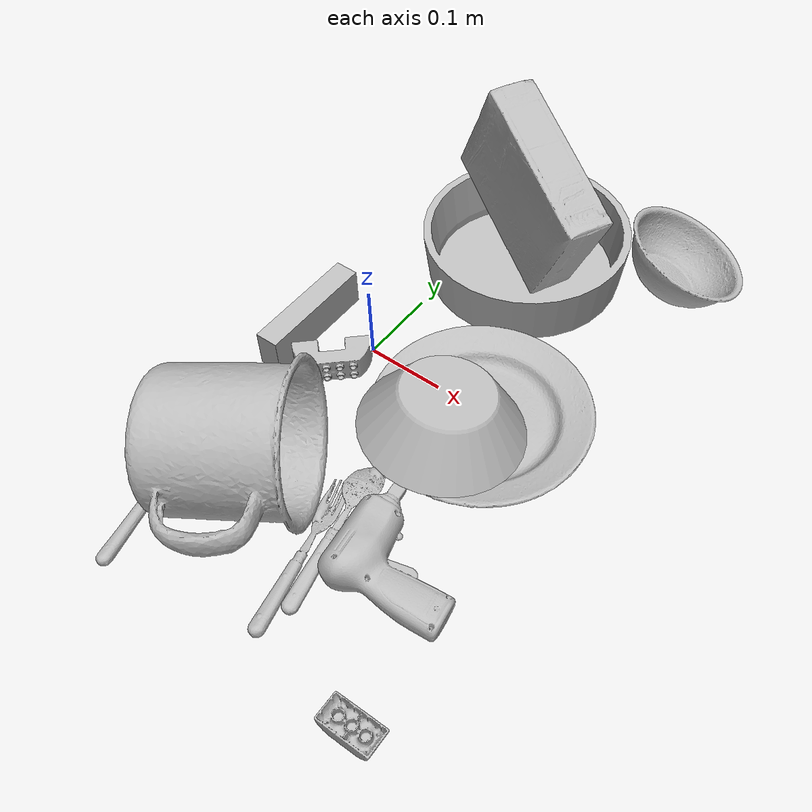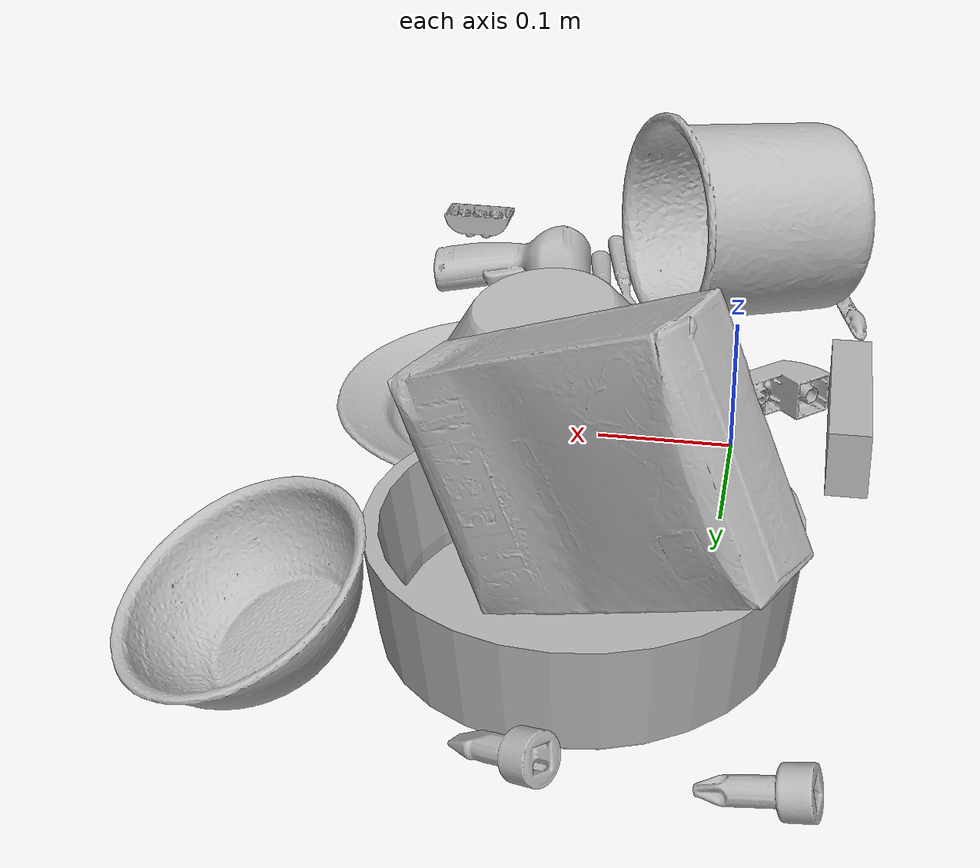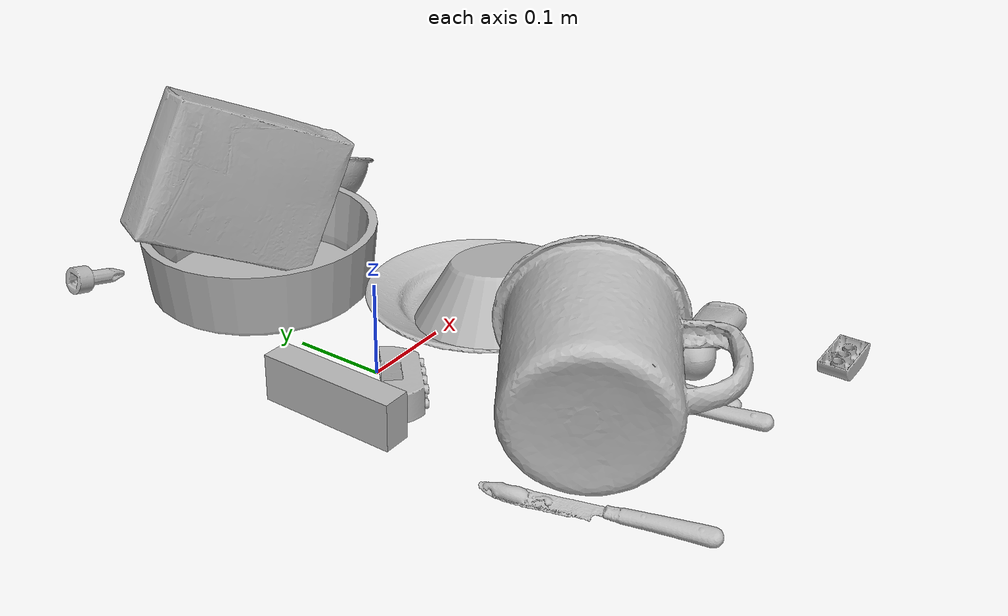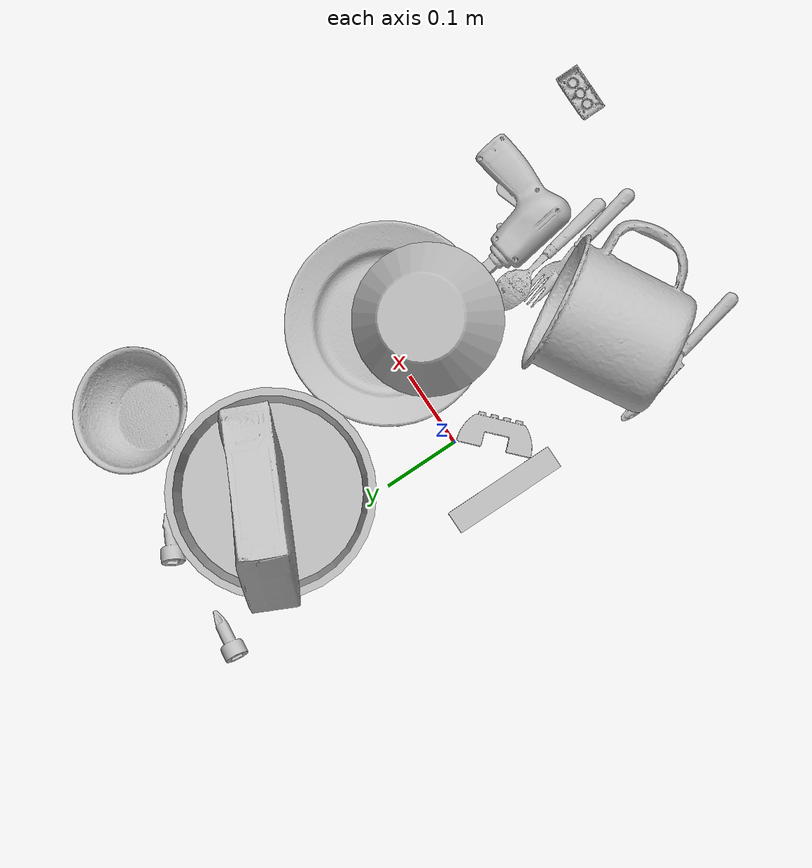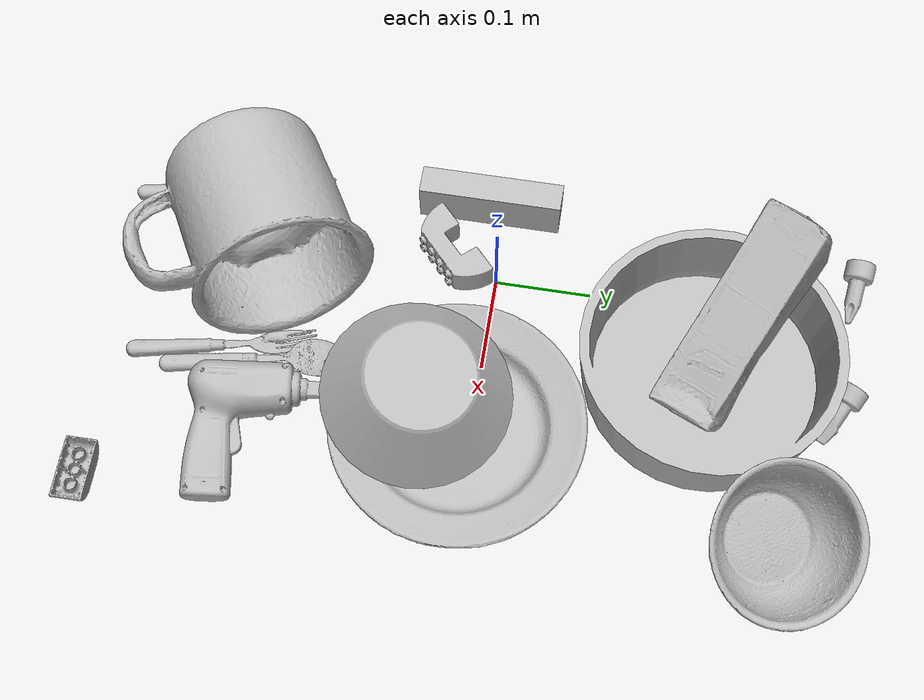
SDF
<sdf version="1.4">
  <world name="default">
    <light name="light1" type="point">
      <pose>0 0 1 0 0 0</pose>
      <diffuse>3 3 3 1</diffuse>
      <specular>3 3 3 1</specular>
    </light>
    <light name="light2" type="point">
      <pose>0 0.5 2 0 0 0</pose>
      <diffuse>1 1 1 1</diffuse>
      <specular>1 1 1 1</specular>
    </light>
    <light name="light3" type="point">
      <pose>0 0.5 2 0 0 0</pose>
      <diffuse>3 3 3 1</diffuse>
      <specular>3 3 3 1</specular>
    </light>
    <scene>
      <ambient>0.7 0.7 0.7</ambient>
    </scene>
    <model name="plate1">
      <link name="link_plate1">
        <collision name="default">
          <geometry>
            <mesh>
              <uri>model://plate/collision_meshes/collision.obj</uri>
              <scale>1.0 1.0 1.0</scale>
            </mesh>
          </geometry>
          <surface>
            <friction>
              <ode>
                <mu>0.5</mu>
                <mu2>0.5</mu2>
              </ode>
            </friction>
          <contact>
        <ode>
            <max_vel>0</max_vel>
            <min_depth>0.0001</min_depth>
            <kp>1e8</kp>
        </ode>
    </contact></surface>
        </collision>
        <visual name="default">
          <geometry>
            <mesh>
              <uri>model://plate/visual_meshes/visual.dae</uri>
              <scale>1.0 1.0 1.0</scale>
            </mesh>
          </geometry>
        </visual>
        <inertial>
          <mass>0.2627958059310913</mass>
          <pose>-0.0006044646725058556 0.00027825895813293755 -0.0010561998933553696 0.0022187866930069794 -0.0032254842153956703 0.4526099982878722</pose>
          <inertia>
            <ixx>0.0012293643</ixx>
            <iyy>0.0012176059</iyy>
            <izz>0.0024044532</izz>
            <ixy>0</ixy>
            <ixz>0</ixz>
            <iyz>0</iyz>
          </inertia>
        </inertial>
      </link>
      <pose>0.17125466465950012 -0.013195060193538666 0.013733040541410446 -3.6994363287272455e-07 5.203204227626745e-08 2.758339592473651</pose>
    </model>
    <model name="plate2">
      <link name="link_plate2">
        <collision name="default">
          <geometry>
            <mesh>
              <uri>model://pan_tefal/collision_meshes/collision.obj</uri>
              <scale>1.0 1.0 1.0</scale>
            </mesh>
          </geometry>
          <surface>
            <friction>
              <ode>
                <mu>0.5</mu>
                <mu2>0.5</mu2>
              </ode>
            </friction>
          <contact>
        <ode>
            <max_vel>0</max_vel>
            <min_depth>0.0001</min_depth>
            <kp>1e8</kp>
        </ode>
    </contact></surface>
        </collision>
        <visual name="default">
          <geometry>
            <mesh>
              <uri>model://pan_tefal/visual_meshes/visual.dae</uri>
              <scale>1.0 1.0 1.0</scale>
            </mesh>
          </geometry>
        </visual>
        <inertial>
          <mass>1.5012701749801636</mass>
          <pose>-0.00018001999706029892 3.279017983004451e-05 -0.00851493701338768 0.0008190300793188327 -0.0003301349064117064 -0.3318640955526003</pose>
          <inertia>
            <ixx>0.010363197</ixx>
            <iyy>0.010430007</iyy>
            <izz>0.019076647</izz>
            <ixy>0</ixy>
            <ixz>0</ixz>
            <iyz>0</iyz>
          </inertia>
        </inertial>
      </link>
      <pose>0.07428862899541855 0.22685378789901733 0.03789800405502319 -0.0011173977966882828 -0.0010871721324961562 0.34465208668575</pose>
    </model>
    <model name="bowl1">
      <link name="link_bowl1">
        <collision name="default">
          <geometry>
            <mesh>
              <uri>model://bowl_a/collision_meshes/collision.obj</uri>
              <scale>1.0 1.0 1.0</scale>
            </mesh>
          </geometry>
          <surface>
            <friction>
              <ode>
                <mu>0.5</mu>
                <mu2>0.5</mu2>
              </ode>
            </friction>
          <contact>
        <ode>
            <max_vel>0</max_vel>
            <min_depth>0.0001</min_depth>
            <kp>1e8</kp>
        </ode>
    </contact></surface>
        </collision>
        <visual name="default">
          <geometry>
            <mesh>
              <uri>model://bowl_a/visual_meshes/visual.dae</uri>
              <scale>1.0 1.0 1.0</scale>
            </mesh>
          </geometry>
        </visual>
        <inertial>
          <mass>0.25230005383491516</mass>
          <pose>0.0002786753175314516 4.731153603643179e-05 -0.001376529224216938 -0.000980537182568925 -0.0010938202432478224 -0.19123453155183487</pose>
          <inertia>
            <ixx>0.00071831</ixx>
            <iyy>0.0007227198</iyy>
            <izz>0.0012775414</izz>
            <ixy>0</ixy>
            <ixz>0</ixz>
            <iyz>0</iyz>
          </inertia>
        </inertial>
      </link>
      <pose>0.1494554877281189 -0.054359547793865204 0.05214427039027214 -3.080249708825182 0.13225390788650096 1.5202810461795309</pose>
    </model>
    <model name="bowl2">
      <link name="link_bowl2">
        <collision name="default">
          <geometry>
            <mesh>
              <uri>model://bowl/collision_meshes/collision.obj</uri>
              <scale>1.0 1.0 1.0</scale>
            </mesh>
          </geometry>
          <surface>
            <friction>
              <ode>
                <mu>0.5</mu>
                <mu2>0.5</mu2>
              </ode>
            </friction>
          <contact>
        <ode>
            <max_vel>0</max_vel>
            <min_depth>0.0001</min_depth>
            <kp>1e8</kp>
        </ode>
    </contact></surface>
        </collision>
        <visual name="default">
          <geometry>
            <mesh>
              <uri>model://bowl/visual_meshes/visual.dae</uri>
              <scale>1.0 1.0 1.0</scale>
            </mesh>
          </geometry>
        </visual>
        <inertial>
          <mass>0.09131127595901489</mass>
          <pose>0.00020444947585929185 -0.0010302107548341155 -0.0008042654953896999 -0.01576413996306862 0.014546728377416086 0.7140363947853973</pose>
          <inertia>
            <ixx>0.00020974927</ixx>
            <iyy>0.00020506265</iyy>
            <izz>0.00035287044</izz>
            <ixy>0</ixy>
            <ixz>0</ixz>
            <iyz>0</iyz>
          </inertia>
        </inertial>
      </link>
      <pose>0.25076791644096375 0.30916017293930054 0.043873999267816544 0.4165801753415066 -0.16447482120522516 2.6324987185010427</pose>
    </model>
    <model name="silverware1">
      <link name="link_silverware1">
        <collision name="default">
          <geometry>
            <mesh>
              <uri>model://knife/collision_meshes/collision.obj</uri>
              <scale>1.0 1.0 1.0</scale>
            </mesh>
          </geometry>
          <surface>
            <friction>
              <ode>
                <mu>0.5</mu>
                <mu2>0.5</mu2>
              </ode>
            </friction>
          <contact>
        <ode>
            <max_vel>0</max_vel>
            <min_depth>0.0001</min_depth>
            <kp>1e8</kp>
        </ode>
    </contact></surface>
        </collision>
        <visual name="default">
          <geometry>
            <mesh>
              <uri>model://knife/visual_meshes/visual.dae</uri>
              <scale>1.0 1.0 1.0</scale>
            </mesh>
          </geometry>
        </visual>
        <inertial>
          <mass>0.033491987735033035</mass>
          <pose>-0.023785259574651718 0.00152751209679991 5.062024501967244e-05 0.07305195921562309 0.017248415702697233 -0.007409822782391368</pose>
          <inertia>
            <ixx>9.5063825e-07</ixx>
            <iyy>0.00012867076</iyy>
            <izz>0.00012897696</izz>
            <ixy>0</ixy>
            <ixz>0</ixz>
            <iyz>0</iyz>
          </inertia>
        </inertial>
      </link>
      <pose>-0.07050307095050812 -0.29613956809043884 0.005810763221234083 2.8893756060923907 0.025915018858639678 1.827306459236545</pose>
    </model>
    <model name="box1">
      <link name="link_box1">
        <collision name="default">
          <geometry>
            <mesh>
              <uri>model://cracker_box/collision_meshes/collision.obj</uri>
              <scale>1.0 1.0 1.0</scale>
            </mesh>
          </geometry>
          <surface>
            <friction>
              <ode>
                <mu>0.5</mu>
                <mu2>0.5</mu2>
              </ode>
            </friction>
          <contact>
        <ode>
            <max_vel>0</max_vel>
            <min_depth>0.0001</min_depth>
            <kp>1e8</kp>
        </ode>
    </contact></surface>
        </collision>
        <visual name="default">
          <geometry>
            <mesh>
              <uri>model://cracker_box/visual_meshes/visual.dae</uri>
              <scale>1.0 1.0 1.0</scale>
            </mesh>
          </geometry>
        </visual>
        <inertial>
          <mass>3.401942253112793</mass>
          <pose>0.0009464150061830878 0.00025434247800149024 -0.001702953246422112 -0.00031620765582640923 -0.011106486806186075 0.0025467954673401043</pose>
          <inertia>
            <ixx>0.008653021</ixx>
            <iyy>0.014287839</iyy>
            <izz>0.020390058</izz>
            <ixy>0</ixy>
            <ixz>0</ixz>
            <iyz>0</iyz>
          </inertia>
        </inertial>
      </link>
      <pose>0.06614366173744202 0.24738900363445282 0.12303958088159561 1.5859608642680632 -0.4199516297545157 2.701241626733638</pose>
    </model>
    <model name="box2">
      <link name="link_box2">
        <collision name="default">
          <geometry>
            <mesh>
              <uri>model://jenga/collision_meshes/collision.obj</uri>
              <scale>1.0 1.0 1.0</scale>
            </mesh>
          </geometry>
          <surface>
            <friction>
              <ode>
                <mu>0.5</mu>
                <mu2>0.5</mu2>
              </ode>
            </friction>
          <contact>
        <ode>
            <max_vel>0</max_vel>
            <min_depth>0.0001</min_depth>
            <kp>1e8</kp>
        </ode>
    </contact></surface>
        </collision>
        <visual name="default">
          <geometry>
            <mesh>
              <uri>model://jenga/visual_meshes/visual.dae</uri>
              <scale>1.0 1.0 1.0</scale>
            </mesh>
          </geometry>
        </visual>
        <inertial>
          <mass>0.15917322039604187</mass>
          <pose>-2.502856091268768e-07 -0.00010250010382151231 -4.0923405322246253e-05 0.0 -7.34215461761844e-07 0.0</pose>
          <inertia>
            <ixx>4.4047094e-05</ixx>
            <iyy>0.0002984619</iyy>
            <izz>0.00031863348</izz>
            <ixy>0</ixy>
            <ixz>0</ixz>
            <iyz>0</iyz>
          </inertia>
        </inertial>
      </link>
      <pose>-0.0848204717040062 -0.018405769020318985 0.024496974423527718 -1.5774870653744673 -6.14786494301487e-07 -1.5708019728794655</pose>
    </model>
    <model name="cup1">
      <link name="link_cup1">
        <collision name="default">
          <geometry>
            <mesh>
              <uri>model://mug/collision_meshes/collision.obj</uri>
              <scale>2.0 2.0 2.0</scale>
            </mesh>
          </geometry>
          <surface>
            <friction>
              <ode>
                <mu>0.5</mu>
                <mu2>0.5</mu2>
              </ode>
            </friction>
          <contact>
        <ode>
            <max_vel>0</max_vel>
            <min_depth>0.0001</min_depth>
            <kp>1e8</kp>
        </ode>
    </contact></surface>
        </collision>
        <visual name="default">
          <geometry>
            <mesh>
              <uri>model://mug/visual_meshes/visual.dae</uri>
              <scale>2.0 2.0 2.0</scale>
            </mesh>
          </geometry>
        </visual>
        <inertial>
          <mass>1.8939067125320435</mass>
          <pose>0.019143342971801758 0.0016286505851894617 -0.02189466543495655 -0.12983139039190478 0.08737723243087561 0.05507286357129759</pose>
          <inertia>
            <ixx>0.0075250226</ixx>
            <iyy>0.008405008</iyy>
            <izz>0.009720505</izz>
            <ixy>0</ixy>
            <ixz>0</ixz>
            <iyz>0</iyz>
          </inertia>
        </inertial>
      </link>
      <pose>0.018892770633101463 -0.26051023602485657 0.08880595117807388 1.4784124762149744 0.1463850141191576 2.0833664669045597</pose>
    </model>
    <model name="silverware2">
      <link name="link_silverware2">
        <collision name="default">
          <geometry>
            <mesh>
              <uri>model://fork/collision_meshes/collision.obj</uri>
              <scale>1.0 1.0 1.0</scale>
            </mesh>
          </geometry>
          <surface>
            <friction>
              <ode>
                <mu>0.5</mu>
                <mu2>0.5</mu2>
              </ode>
            </friction>
          <contact>
        <ode>
            <max_vel>0</max_vel>
            <min_depth>0.0001</min_depth>
            <kp>1e8</kp>
        </ode>
    </contact></surface>
        </collision>
        <visual name="default">
          <geometry>
            <mesh>
              <uri>model://fork/visual_meshes/visual.dae</uri>
              <scale>1.0 1.0 1.0</scale>
            </mesh>
          </geometry>
        </visual>
        <inertial>
          <mass>0.01107261423021555</mass>
          <pose>-0.02957005240023136 0.00046588238910771906 0.0003218861820641905 -0.01355183639158028 -0.010977839693189282 0.014453902572364752</pose>
          <inertia>
            <ixx>3.8815773e-07</ixx>
            <iyy>2.8907412e-05</iyy>
            <izz>2.9081024e-05</izz>
            <ixy>0</ixy>
            <ixz>0</ixz>
            <iyz>0</iyz>
          </inertia>
        </inertial>
      </link>
      <pose>0.11894109845161438 -0.26819634437561035 0.0056816451251506805 -0.17181422334591065 0.026355526078213534 1.780090404544054</pose>
    </model>
    <model name="silverware3">
      <link name="link_silverware3">
        <collision name="default">
          <geometry>
            <mesh>
              <uri>model://spoon/collision_meshes/collision.obj</uri>
              <scale>1.0 1.0 1.0</scale>
            </mesh>
          </geometry>
          <surface>
            <friction>
              <ode>
                <mu>0.5</mu>
                <mu2>0.5</mu2>
              </ode>
            </friction>
          <contact>
        <ode>
            <max_vel>0</max_vel>
            <min_depth>0.0001</min_depth>
            <kp>1e8</kp>
        </ode>
    </contact></surface>
        </collision>
        <visual name="default">
          <geometry>
            <mesh>
              <uri>model://spoon/visual_meshes/visual.dae</uri>
              <scale>1.0 1.0 1.0</scale>
            </mesh>
          </geometry>
        </visual>
        <inertial>
          <mass>0.03720218688249588</mass>
          <pose>-0.005526323337107897 -0.00160341733135283 -0.0007271655485965312 0.035216710753312216 -0.03906584126265578 0.006150608185168733</pose>
          <inertia>
            <ixx>2.0692462e-06</ixx>
            <iyy>0.00014155307</iyy>
            <izz>0.00014257352</izz>
            <ixy>0</ixy>
            <ixz>0</ixz>
            <iyz>0</iyz>
          </inertia>
        </inertial>
      </link>
      <pose>0.1337369978427887 -0.22960048913955688 0.010147626511752605 3.1183487071776845 -0.06196846855553712 1.753897847568567</pose>
    </model>
    <model name="toy1">
      <link name="link_toy1">
        <collision name="default">
          <geometry>
            <mesh>
              <uri>model://e_toy_airplane/collision_meshes/collision.obj</uri>
              <scale>1.0 1.0 1.0</scale>
            </mesh>
          </geometry>
          <surface>
            <friction>
              <ode>
                <mu>0.5</mu>
                <mu2>0.5</mu2>
              </ode>
            </friction>
          <contact>
        <ode>
            <max_vel>0</max_vel>
            <min_depth>0.0001</min_depth>
            <kp>1e8</kp>
        </ode>
    </contact></surface>
        </collision>
        <visual name="default">
          <geometry>
            <mesh>
              <uri>model://e_toy_airplane/visual_meshes/visual.dae</uri>
              <scale>1.0 1.0 1.0</scale>
            </mesh>
          </geometry>
        </visual>
        <inertial>
          <mass>0.02491888962686062</mass>
          <pose>0.00011740486661437899 -2.248287455586251e-05 -0.011187204159796238 0.00551850201937057 0.009228289896812953 0.1504152046419029</pose>
          <inertia>
            <ixx>7.60553e-06</ixx>
            <iyy>7.52773e-06</iyy>
            <izz>2.2857607e-06</izz>
            <ixy>0</ixy>
            <ixz>0</ixz>
            <iyz>0</iyz>
          </inertia>
        </inertial>
      </link>
      <pose>0.09870611876249313 0.36373159289360046 0.010173726826906204 2.9714781979630467 -1.2657765606974403 -0.303871065738451</pose>
    </model>
    <model name="toy2">
      <link name="link_toy2">
        <collision name="default">
          <geometry>
            <mesh>
              <uri>model://e_lego_duplo/collision_meshes/collision.obj</uri>
              <scale>1.0 1.0 1.0</scale>
            </mesh>
          </geometry>
          <surface>
            <friction>
              <ode>
                <mu>0.5</mu>
                <mu2>0.5</mu2>
              </ode>
            </friction>
          <contact>
        <ode>
            <max_vel>0</max_vel>
            <min_depth>0.0001</min_depth>
            <kp>1e8</kp>
        </ode>
    </contact></surface>
        </collision>
        <visual name="default">
          <geometry>
            <mesh>
              <uri>model://e_lego_duplo/visual_meshes/visual.dae</uri>
              <scale>1.0 1.0 1.0</scale>
            </mesh>
          </geometry>
        </visual>
        <inertial>
          <mass>0.08635181933641434</mass>
          <pose>0.00032560451654717326 0.0002348542184336111 0.0019521444337442517 -0.022567902749969417 -6.824781923482006e-05 -0.00762515629770681</pose>
          <inertia>
            <ixx>1.8007207e-05</ixx>
            <iyy>7.390619e-05</iyy>
            <izz>7.1969785e-05</izz>
            <ixy>0</ixy>
            <ixz>0</ixz>
            <iyz>0</iyz>
          </inertia>
        </inertial>
      </link>
      <pose>-0.020124495029449463 -0.05116933584213257 0.016279572620987892 1.5787007714845778 -0.00478163275497175 0.7506890846028474</pose>
    </model>
    <model name="toy3">
      <link name="link_toy3">
        <collision name="default">
          <geometry>
            <mesh>
              <uri>model://d_toy_airplane/collision_meshes/collision.obj</uri>
              <scale>1.0 1.0 1.0</scale>
            </mesh>
          </geometry>
          <surface>
            <friction>
              <ode>
                <mu>0.5</mu>
                <mu2>0.5</mu2>
              </ode>
            </friction>
          <contact>
        <ode>
            <max_vel>0</max_vel>
            <min_depth>0.0001</min_depth>
            <kp>1e8</kp>
        </ode>
    </contact></surface>
        </collision>
        <visual name="default">
          <geometry>
            <mesh>
              <uri>model://d_toy_airplane/visual_meshes/visual.dae</uri>
              <scale>1.0 1.0 1.0</scale>
            </mesh>
          </geometry>
        </visual>
        <inertial>
          <mass>0.01398532185703516</mass>
          <pose>9.410311031388119e-05 -5.809316644445062e-05 -0.011728093959391117 0.00026700916858413164 0.004678987951971881 0.5194708538811167</pose>
          <inertia>
            <ixx>4.1925277e-06</ixx>
            <iyy>4.1956896e-06</iyy>
            <izz>1.2657512e-06</izz>
            <ixy>0</ixy>
            <ixz>0</ixz>
            <iyz>0</iyz>
          </inertia>
        </inertial>
      </link>
      <pose>-0.04092918708920479 0.3734603226184845 0.011234521865844727 1.7944151084833155 -0.19704906746690157 1.4022683758776828</pose>
    </model>
    <model name="toy4">
      <link name="link_toy4">
        <collision name="default">
          <geometry>
            <mesh>
              <uri>model://b_toy_airplane/collision_meshes/collision.obj</uri>
              <scale>1.0 1.0 1.0</scale>
            </mesh>
          </geometry>
          <surface>
            <friction>
              <ode>
                <mu>0.5</mu>
                <mu2>0.5</mu2>
              </ode>
            </friction>
          <contact>
        <ode>
            <max_vel>0</max_vel>
            <min_depth>0.0001</min_depth>
            <kp>1e8</kp>
        </ode>
    </contact></surface>
        </collision>
        <visual name="default">
          <geometry>
            <mesh>
              <uri>model://b_toy_airplane/visual_meshes/visual.dae</uri>
              <scale>1.0 1.0 1.0</scale>
            </mesh>
          </geometry>
        </visual>
        <inertial>
          <mass>0.39888885617256165</mass>
          <pose>0.00508136348798871 0.0040155863389372826 0.009543065913021564 -0.04001810285123905 -0.040221831504284974 -0.560150355465512</pose>
          <inertia>
            <ixx>0.00074054446</ixx>
            <iyy>0.00029600295</iyy>
            <izz>0.00092131115</izz>
            <ixy>0</ixy>
            <ixz>0</ixz>
            <iyz>0</iyz>
          </inertia>
        </inertial>
      </link>
      <pose>0.1981218308210373 -0.23969805240631104 0.01697787456214428 0.1848765263054353 0.11349916007297131 1.7252048317175523</pose>
    </model>
    <model name="toy5">
      <link name="link_toy5">
        <collision name="default">
          <geometry>
            <mesh>
              <uri>model://a_lego_duplo/collision_meshes/collision.obj</uri>
              <scale>1.0 1.0 1.0</scale>
            </mesh>
          </geometry>
          <surface>
            <friction>
              <ode>
                <mu>0.5</mu>
                <mu2>0.5</mu2>
              </ode>
            </friction>
          <contact>
        <ode>
            <max_vel>0</max_vel>
            <min_depth>0.0001</min_depth>
            <kp>1e8</kp>
        </ode>
    </contact></surface>
        </collision>
        <visual name="default">
          <geometry>
            <mesh>
              <uri>model://a_lego_duplo/visual_meshes/visual.dae</uri>
              <scale>1.0 1.0 1.0</scale>
            </mesh>
          </geometry>
        </visual>
        <inertial>
          <mass>0.014756478369235992</mass>
          <pose>-0.00011337623436702415 0.00018517495482228696 0.00036926049506291747 -0.01411700810413075 -0.00012565743579302476 6.142605902116464e-05</pose>
          <inertia>
            <ixx>1.8918981e-06</ixx>
            <iyy>4.238266e-06</iyy>
            <izz>5.250033e-06</izz>
            <ixy>0</ixy>
            <ixz>0</ixz>
            <iyz>0</iyz>
          </inertia>
        </inertial>
      </link>
      <pose>0.27836012840270996 -0.3777956962585449 0.01212479081004858 -3.141286184959561 -0.015583456552602288 0.0020399720622281655</pose>
    </model>
  <physics type="ode">
      <max_contacts>50</max_contacts>
      <ode>
        <solver>
          <type>quick</type>
          <iters>75</iters>
        </solver>
        <constraints>
          <contact_max_correcting_vel>0</contact_max_correcting_vel>
          <contact_surface_layer>0</contact_surface_layer>
        </constraints>
      </ode>
    </physics></world>
</sdf>
